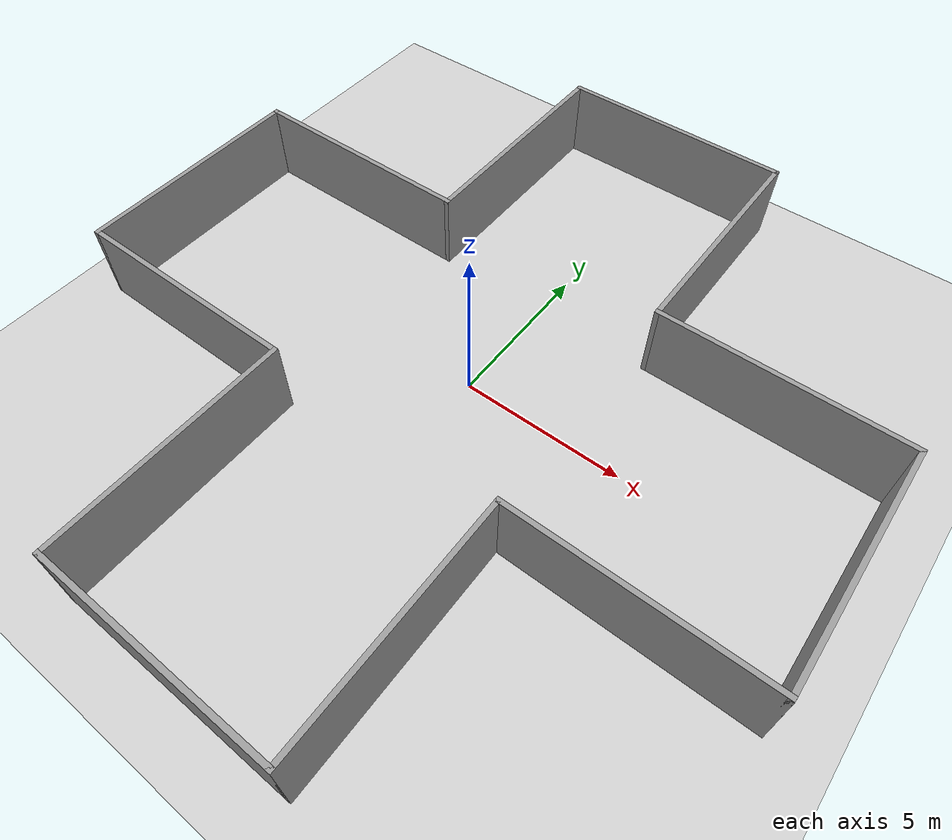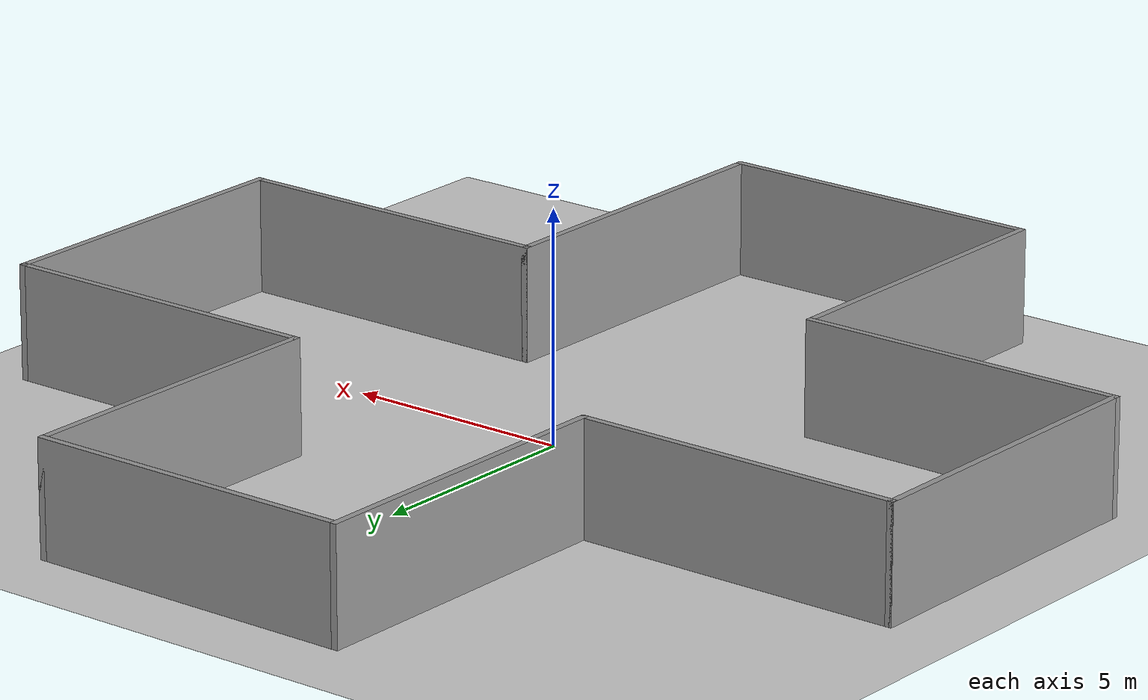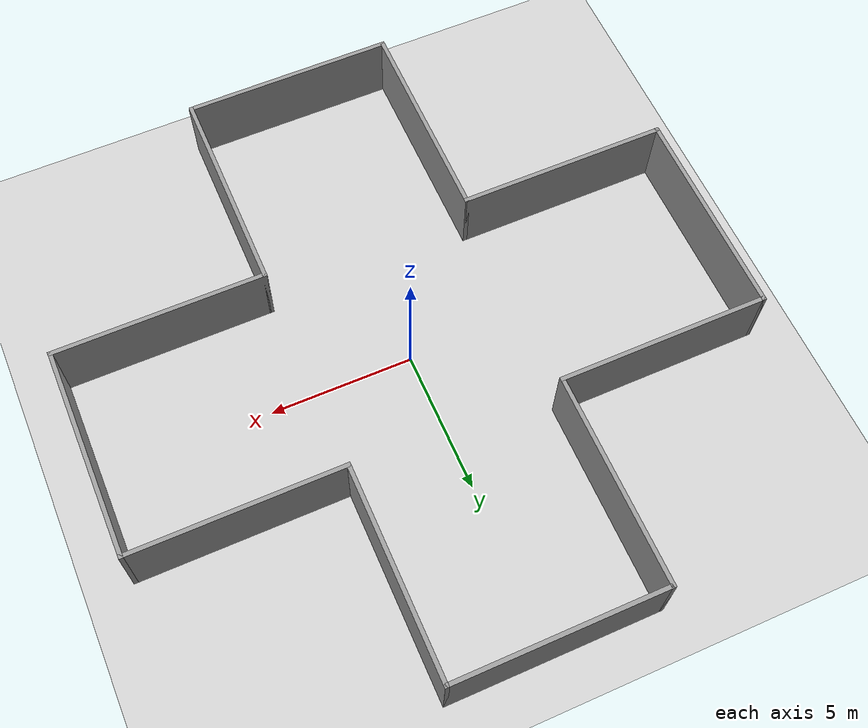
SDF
<?xml version='1.0' encoding='utf-8'?>
<sdf version="1.6">
  <world name="rooms">
    <gravity>0 0 -9.8</gravity>
    <physics default="0" name="default_physics" type="ode">
      <max_step_size>0.001</max_step_size>
      <real_time_factor>1</real_time_factor>
      <real_time_update_rate>1000</real_time_update_rate>
    </physics>

    <include>
      <uri>model://sun</uri>
    </include>

    <include>
      <uri>model://ground_plane</uri>
    </include>

    <include>
      <uri>model://cross</uri>
      <static>true</static>
      <pose>0 0 0 0 0 0</pose>
    </include>

  </world>
</sdf>

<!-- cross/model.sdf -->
<sdf version='1.7'>
  <model name='cross'>
    <pose>10.95 10.95 0 0 -0 0</pose>
    <link name='Wall_10'>
      <collision name='Wall_10_Collision'>
        <geometry>
          <box>
            <size>7.45 0.15 2.5</size>
          </box>
        </geometry>
        <pose>0 0 1.25 0 -0 0</pose>
      </collision>
      <visual name='Wall_10_Visual'>
        <pose>0 0 1.25 0 -0 0</pose>
        <geometry>
          <box>
            <size>7.45 0.15 2.5</size>
          </box>
        </geometry>
        <material>
          <script>
            <uri>file://media/materials/scripts/gazebo.material</uri>
            <name>Gazebo/Grey</name>
          </script>
          <ambient>1 1 1 1</ambient>
        </material>
        <meta>
          <layer>0</layer>
        </meta>
      </visual>
      <pose>-10.95 -0 0 0 -0 1.5708</pose>
    </link>
    <link name='Wall_12'>
      <collision name='Wall_12_Collision'>
        <geometry>
          <box>
            <size>0.15 0.15 2.5</size>
          </box>
        </geometry>
        <pose>0 0 1.25 0 -0 0</pose>
      </collision>
      <visual name='Wall_12_Visual'>
        <pose>0 0 1.25 0 -0 0</pose>
        <geometry>
          <box>
            <size>0.15 0.15 2.5</size>
          </box>
        </geometry>
        <material>
          <script>
            <uri>file://media/materials/scripts/gazebo.material</uri>
            <name>Gazebo/Grey</name>
          </script>
          <ambient>1 1 1 1</ambient>
        </material>
        <meta>
          <layer>0</layer>
        </meta>
      </visual>
      <pose>-10.95 3.65 0 0 -0 0</pose>
    </link>
    <link name='Wall_13'>
      <collision name='Wall_13_Collision'>
        <geometry>
          <box>
            <size>7.45 0.15 2.5</size>
          </box>
        </geometry>
        <pose>0 0 1.25 0 -0 0</pose>
      </collision>
      <visual name='Wall_13_Visual'>
        <pose>0 0 1.25 0 -0 0</pose>
        <geometry>
          <box>
            <size>7.45 0.15 2.5</size>
          </box>
        </geometry>
        <material>
          <script>
            <uri>file://media/materials/scripts/gazebo.material</uri>
            <name>Gazebo/Grey</name>
          </script>
          <ambient>1 1 1 1</ambient>
        </material>
        <meta>
          <layer>0</layer>
        </meta>
      </visual>
      <pose>-7.3 3.65 0 0 -0 0</pose>
    </link>
    <link name='Wall_26'>
      <collision name='Wall_26_Collision'>
        <geometry>
          <box>
            <size>7.45 0.15 2.5</size>
          </box>
        </geometry>
        <pose>0 0 1.25 0 -0 0</pose>
      </collision>
      <visual name='Wall_26_Visual'>
        <pose>0 0 1.25 0 -0 0</pose>
        <geometry>
          <box>
            <size>7.45 0.15 2.5</size>
          </box>
        </geometry>
        <material>
          <script>
            <uri>file://media/materials/scripts/gazebo.material</uri>
            <name>Gazebo/Grey</name>
          </script>
          <ambient>1 1 1 1</ambient>
        </material>
        <meta>
          <layer>0</layer>
        </meta>
      </visual>
      <pose>-3.65 7.3 0 0 -0 1.5708</pose>
    </link>
    <link name='Wall_28'>
      <collision name='Wall_28_Collision'>
        <geometry>
          <box>
            <size>0.15 0.15 2.5</size>
          </box>
        </geometry>
        <pose>0 0 1.25 0 -0 0</pose>
      </collision>
      <visual name='Wall_28_Visual'>
        <pose>0 0 1.25 0 -0 0</pose>
        <geometry>
          <box>
            <size>0.15 0.15 2.5</size>
          </box>
        </geometry>
        <material>
          <script>
            <uri>file://media/materials/scripts/gazebo.material</uri>
            <name>Gazebo/Grey</name>
          </script>
          <ambient>1 1 1 1</ambient>
        </material>
        <meta>
          <layer>0</layer>
        </meta>
      </visual>
      <pose>-3.65 10.95 0 0 -0 0</pose>
    </link>
    <link name='Wall_29'>
      <collision name='Wall_29_Collision'>
        <geometry>
          <box>
            <size>7.45 0.15 2.5</size>
          </box>
        </geometry>
        <pose>0 0 1.25 0 -0 0</pose>
      </collision>
      <visual name='Wall_29_Visual'>
        <pose>0 0 1.25 0 -0 0</pose>
        <geometry>
          <box>
            <size>7.45 0.15 2.5</size>
          </box>
        </geometry>
        <material>
          <script>
            <uri>file://media/materials/scripts/gazebo.material</uri>
            <name>Gazebo/Grey</name>
          </script>
          <ambient>1 1 1 1</ambient>
        </material>
        <meta>
          <layer>0</layer>
        </meta>
      </visual>
      <pose>-0 10.95 0 0 -0 0</pose>
    </link>
    <link name='Wall_31'>
      <collision name='Wall_31_Collision'>
        <geometry>
          <box>
            <size>7.45 0.15 2.5</size>
          </box>
        </geometry>
        <pose>0 0 1.25 0 -0 0</pose>
      </collision>
      <visual name='Wall_31_Visual'>
        <pose>0 0 1.25 0 -0 0</pose>
        <geometry>
          <box>
            <size>7.45 0.15 2.5</size>
          </box>
        </geometry>
        <material>
          <script>
            <uri>file://media/materials/scripts/gazebo.material</uri>
            <name>Gazebo/Grey</name>
          </script>
          <ambient>1 1 1 1</ambient>
        </material>
        <meta>
          <layer>0</layer>
        </meta>
      </visual>
      <pose>-7.3 -3.65 0 0 -0 0</pose>
    </link>
    <link name='Wall_33'>
      <collision name='Wall_33_Collision'>
        <geometry>
          <box>
            <size>7.45 0.15 2.5</size>
          </box>
        </geometry>
        <pose>0 0 1.25 0 -0 0</pose>
      </collision>
      <visual name='Wall_33_Visual'>
        <pose>0 0 1.25 0 -0 0</pose>
        <geometry>
          <box>
            <size>7.45 0.15 2.5</size>
          </box>
        </geometry>
        <material>
          <script>
            <uri>file://media/materials/scripts/gazebo.material</uri>
            <name>Gazebo/Grey</name>
          </script>
          <ambient>1 1 1 1</ambient>
        </material>
        <meta>
          <layer>0</layer>
        </meta>
      </visual>
      <pose>-0 -10.95 0 0 -0 0</pose>
    </link>
    <link name='Wall_35'>
      <collision name='Wall_35_Collision'>
        <geometry>
          <box>
            <size>7.45 0.15 2.5</size>
          </box>
        </geometry>
        <pose>0 0 1.25 0 -0 0</pose>
      </collision>
      <visual name='Wall_35_Visual'>
        <pose>0 0 1.25 0 -0 0</pose>
        <geometry>
          <box>
            <size>7.45 0.15 2.5</size>
          </box>
        </geometry>
        <material>
          <script>
            <uri>file://media/materials/scripts/gazebo.material</uri>
            <name>Gazebo/Grey</name>
          </script>
          <ambient>1 1 1 1</ambient>
        </material>
        <meta>
          <layer>0</layer>
        </meta>
      </visual>
      <pose>3.65 -7.3 0 0 -0 1.5708</pose>
    </link>
    <link name='Wall_36'>
      <collision name='Wall_36_Collision'>
        <geometry>
          <box>
            <size>0.15 0.15 2.5</size>
          </box>
        </geometry>
        <pose>0 0 1.25 0 -0 0</pose>
      </collision>
      <visual name='Wall_36_Visual'>
        <pose>0 0 1.25 0 -0 0</pose>
        <geometry>
          <box>
            <size>0.15 0.15 2.5</size>
          </box>
        </geometry>
        <material>
          <script>
            <uri>file://media/materials/scripts/gazebo.material</uri>
            <name>Gazebo/Grey</name>
          </script>
          <ambient>1 1 1 1</ambient>
        </material>
        <meta>
          <layer>0</layer>
        </meta>
      </visual>
      <pose>3.65 -3.65 0 0 -0 0</pose>
    </link>
    <link name='Wall_37'>
      <collision name='Wall_37_Collision'>
        <geometry>
          <box>
            <size>7.45 0.15 2.5</size>
          </box>
        </geometry>
        <pose>0 0 1.25 0 -0 0</pose>
      </collision>
      <visual name='Wall_37_Visual'>
        <pose>0 0 1.25 0 -0 0</pose>
        <geometry>
          <box>
            <size>7.45 0.15 2.5</size>
          </box>
        </geometry>
        <material>
          <script>
            <uri>file://media/materials/scripts/gazebo.material</uri>
            <name>Gazebo/Grey</name>
          </script>
          <ambient>1 1 1 1</ambient>
        </material>
        <meta>
          <layer>0</layer>
        </meta>
      </visual>
      <pose>7.3 -3.65 0 0 -0 0</pose>
    </link>
    <link name='Wall_39'>
      <collision name='Wall_39_Collision'>
        <geometry>
          <box>
            <size>7.45 0.15 2.5</size>
          </box>
        </geometry>
        <pose>0 0 1.25 0 -0 0</pose>
      </collision>
      <visual name='Wall_39_Visual'>
        <pose>0 0 1.25 0 -0 0</pose>
        <geometry>
          <box>
            <size>7.45 0.15 2.5</size>
          </box>
        </geometry>
        <material>
          <script>
            <uri>file://media/materials/scripts/gazebo.material</uri>
            <name>Gazebo/Grey</name>
          </script>
          <ambient>1 1 1 1</ambient>
        </material>
        <meta>
          <layer>0</layer>
        </meta>
      </visual>
      <pose>10.95 -0 0 0 -0 1.5708</pose>
    </link>
    <link name='Wall_41'>
      <collision name='Wall_41_Collision'>
        <geometry>
          <box>
            <size>7.45 0.15 2.5</size>
          </box>
        </geometry>
        <pose>0 0 1.25 0 -0 0</pose>
      </collision>
      <visual name='Wall_41_Visual'>
        <pose>0 0 1.25 0 -0 0</pose>
        <geometry>
          <box>
            <size>7.45 0.15 2.5</size>
          </box>
        </geometry>
        <material>
          <script>
            <uri>file://media/materials/scripts/gazebo.material</uri>
            <name>Gazebo/Grey</name>
          </script>
          <ambient>1 1 1 1</ambient>
        </material>
        <meta>
          <layer>0</layer>
        </meta>
      </visual>
      <pose>7.3 3.65 0 0 -0 3.14159</pose>
    </link>
    <link name='Wall_43'>
      <collision name='Wall_43_Collision'>
        <geometry>
          <box>
            <size>0.15 0.15 2.5</size>
          </box>
        </geometry>
        <pose>0 0 1.25 0 -0 0</pose>
      </collision>
      <visual name='Wall_43_Visual'>
        <pose>0 0 1.25 0 -0 0</pose>
        <geometry>
          <box>
            <size>0.15 0.15 2.5</size>
          </box>
        </geometry>
        <material>
          <script>
            <uri>file://media/materials/scripts/gazebo.material</uri>
            <name>Gazebo/Grey</name>
          </script>
          <ambient>1 1 1 1</ambient>
        </material>
        <meta>
          <layer>0</layer>
        </meta>
      </visual>
      <pose>3.65 10.95 0 0 -0 0</pose>
    </link>
    <link name='Wall_44'>
      <collision name='Wall_44_Collision'>
        <geometry>
          <box>
            <size>7.45 0.15 2.5</size>
          </box>
        </geometry>
        <pose>0 0 1.25 0 -0 0</pose>
      </collision>
      <visual name='Wall_44_Visual'>
        <pose>0 0 1.25 0 -0 0</pose>
        <geometry>
          <box>
            <size>7.45 0.15 2.5</size>
          </box>
        </geometry>
        <material>
          <script>
            <uri>file://media/materials/scripts/gazebo.material</uri>
            <name>Gazebo/Grey</name>
          </script>
          <ambient>1 1 1 1</ambient>
        </material>
        <meta>
          <layer>0</layer>
        </meta>
      </visual>
      <pose>3.65 7.3 0 0 -0 -1.5708</pose>
    </link>
    <link name='Wall_8'>
      <collision name='Wall_8_Collision'>
        <geometry>
          <box>
            <size>7.45 0.15 2.5</size>
          </box>
        </geometry>
        <pose>0 0 1.25 0 -0 0</pose>
      </collision>
      <visual name='Wall_8_Visual'>
        <pose>0 0 1.25 0 -0 0</pose>
        <geometry>
          <box>
            <size>7.45 0.15 2.5</size>
          </box>
        </geometry>
        <material>
          <script>
            <uri>file://media/materials/scripts/gazebo.material</uri>
            <name>Gazebo/Grey</name>
          </script>
          <ambient>1 1 1 1</ambient>
        </material>
        <meta>
          <layer>0</layer>
        </meta>
      </visual>
      <pose>-3.65 -7.3 0 0 -0 -1.5708</pose>
    </link>
    <static>1</static>
  </model>
</sdf>
